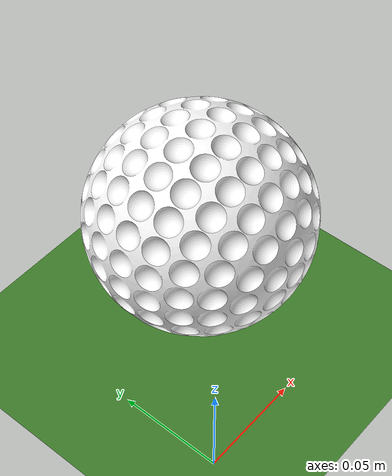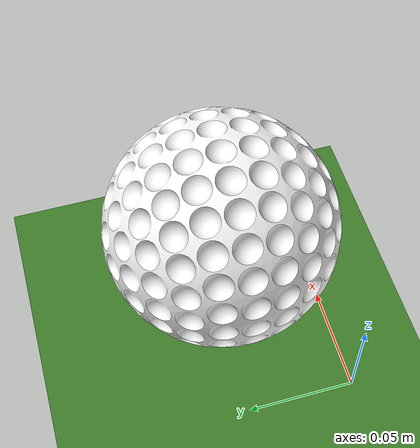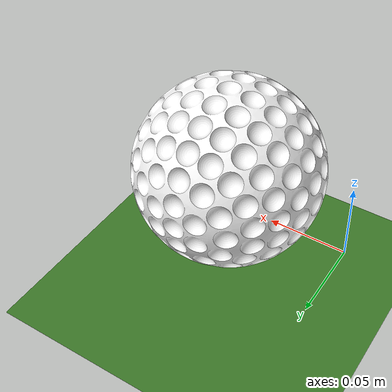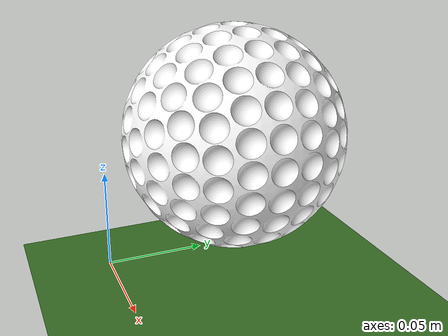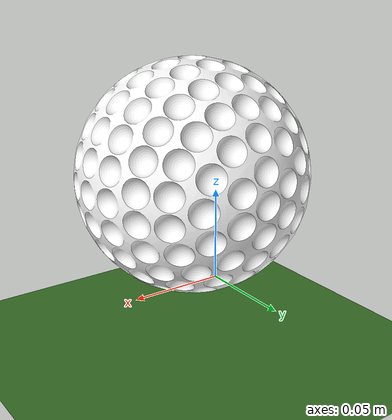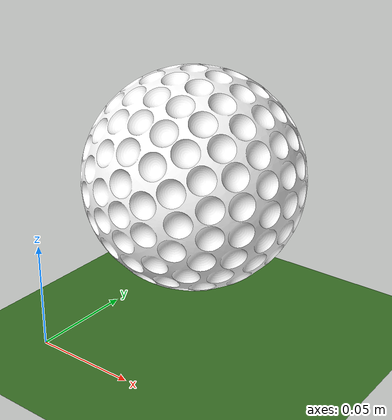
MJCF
<mujoco model="golf_grass">
  <compiler angle="degree" autolimits="true"/>
  <option timestep="0.002" gravity="0 0 -9.81"/>

  <visual>
    <headlight ambient="0.4 0.4 0.4" diffuse="0.6 0.6 0.6" specular="0.1 0.1 0.1"/>
    <global offwidth="1280" offheight="720"/>
  </visual>

  <asset>
    <!-- Sky -->
    <texture name="sky" type="skybox" builtin="gradient" rgb1="0.55 0.75 0.95" rgb2="0.9 0.95 1.0" width="512" height="3072"/>

    <!-- Grass -->
    <texture name="grass_tex" type="2d" builtin="flat" rgb1="0.24 0.48 0.16" rgb2="0.30 0.58 0.20" mark="random" markrgb="0.15 0.35 0.10" random="0.25" width="512" height="512"/>
    <material name="grass_mat" texture="grass_tex" texuniform="true" texrepeat="40 40" reflectance="0" specular="0.05" shininess="0.05"/>

    <!-- Golf ball material -->
    <material name="ball_mat" rgba="0.98 0.98 0.98 1" specular="0.6" shininess="0.6"/>

    <!-- Scaled golf ball mesh -->
    <mesh name="golf_ball_mesh" file="files/golf_ball.stl" scale="0.001 0.001 0.001"/>
  </asset>

  <worldbody>
    <light name="sun" pos="0 0 20" dir="0 0 -1" directional="true" diffuse="0.9 0.9 0.85" specular="0.2 0.2 0.2" castshadow="true"/>

    <!-- Grass floor plane at Z = 0 -->
    <geom name="floor" type="plane" size="25 25 0.1" material="grass_mat" friction="0.8 0.005 0.0001"/>

    <!-- Golf ball body starting slightly above ground (Z = 0.03 m) -->
    <body name="golf_ball" pos="0 0 0.03">
      <freejoint name="ball_free"/>

      <!-- Combined visual & collision mesh geom -->
      <geom name="ball_geom" type="mesh" mesh="golf_ball_mesh" material="ball_mat" mass="0.0459" friction="0.8 0.005 0.0001"/>
    </body>

    <!-- Close-up camera angle -->
    <camera name="close_up" pos="0.2 -0.2 0.1" xyaxes="0.707 0.707 0 -0.408 0.408 0.816"/>
  </worldbody>
</mujoco>
